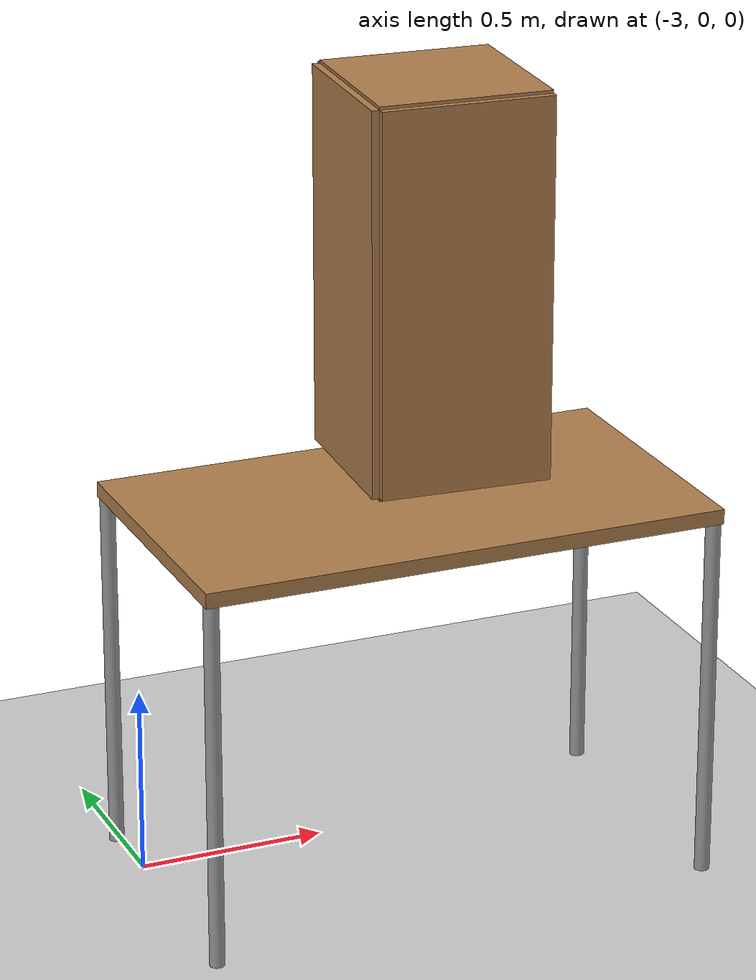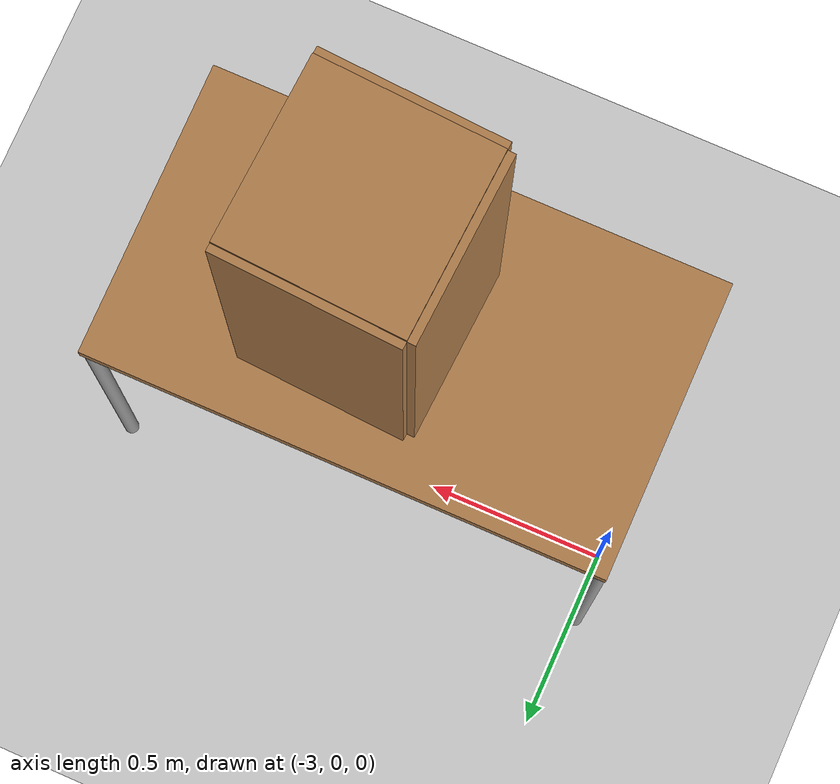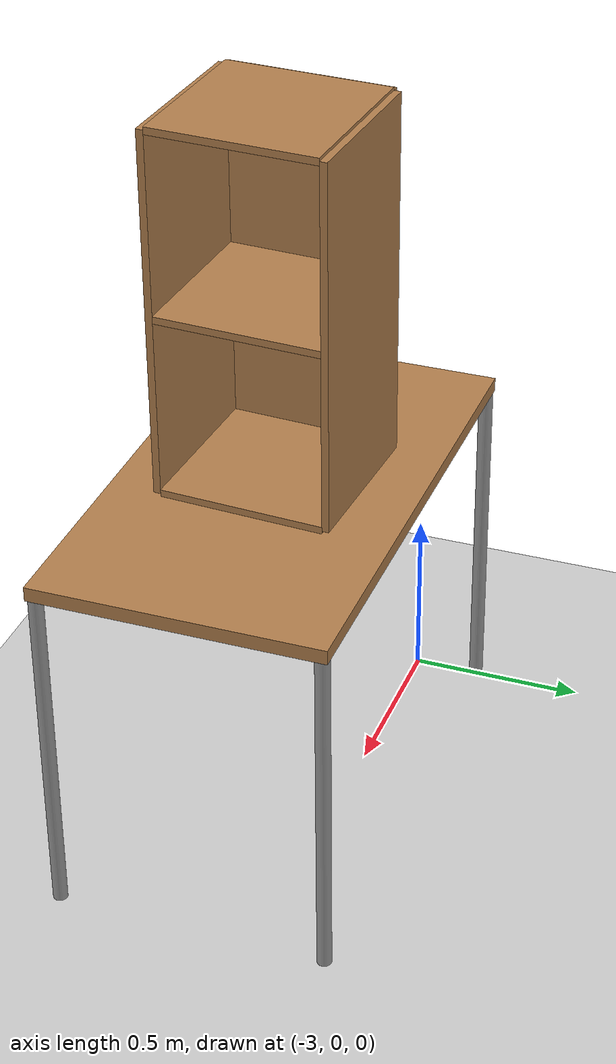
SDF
<sdf version="1.4">
 <world name="default">
  <include><uri>model://ground_plane</uri></include>
  <include><uri>model://sun</uri></include>
  <model name="table">
   <static>1</static>
   <link name="link">
    <collision name="surface">
     <pose>0 0 1 0 -0 0</pose>
     <geometry><box><size>1.5 0.8 0.03</size></box></geometry>
     <surface><friction><ode><mu>0.6</mu><mu2>0.6</mu2></ode></friction></surface>
    </collision>
    <visual name="visual1">
     <pose>0 0 1 0 -0 0</pose>
     <geometry><box><size>1.4 0.8 0.04</size></box></geometry>
     <material>
      <script><uri>file://media/materials/scripts/gazebo.material</uri><name>Gazebo/Wood</name></script>
     </material>
    </visual>
    <collision name="front_left_leg">
     <pose>0.68 0.38 0.5 0 -0 0</pose>
     <geometry><cylinder><radius>0.02</radius><length>1</length></cylinder></geometry>
    </collision>
    <visual name="front_left_leg">
     <pose>0.68 0.38 0.5 0 -0 0</pose>
     <geometry><cylinder><radius>0.02</radius><length>1</length></cylinder></geometry>
     <material>
      <script><uri>file://media/materials/scripts/gazebo.material</uri><name>Gazebo/Grey</name></script>
     </material>
    </visual>
    <collision name="front_right_leg">
     <pose>0.68 -0.38 0.5 0 -0 0</pose>
     <geometry><cylinder><radius>0.02</radius><length>1</length></cylinder></geometry>
    </collision>
    <visual name="front_right_leg">
     <pose>0.68 -0.38 0.5 0 -0 0</pose>
     <geometry><cylinder><radius>0.02</radius><length>1</length></cylinder></geometry>
     <material>
      <script><uri>file://media/materials/scripts/gazebo.material</uri><name>Gazebo/Grey</name></script>
     </material>
    </visual>
    <collision name="back_right_leg">
     <pose>-0.68 -0.38 0.5 0 -0 0</pose>
     <geometry><cylinder><radius>0.02</radius><length>1</length></cylinder></geometry>
    </collision>
    <visual name="back_right_leg">
     <pose>-0.68 -0.38 0.5 0 -0 0</pose>
     <geometry><cylinder><radius>0.02</radius><length>1</length></cylinder></geometry>
     <material>
      <script><uri>file://media/materials/scripts/gazebo.material</uri><name>Gazebo/Grey</name></script>
     </material>
    </visual>
    <collision name="back_left_leg">
     <pose>-0.68 0.38 0.5 0 -0 0</pose>
     <geometry><cylinder><radius>0.02</radius><length>1</length></cylinder></geometry>
    </collision>
    <visual name="back_left_leg">
     <pose>-0.68 0.38 0.5 0 -0 0</pose>
     <geometry><cylinder><radius>0.02</radius><length>1</length></cylinder></geometry>
     <material>
      <script><uri>file://media/materials/scripts/gazebo.material</uri><name>Gazebo/Grey</name></script>
     </material>
    </visual>
    <inertial>
     <inertia><ixx>1</ixx><ixy>0</ixy><ixz>0</ixz><iyy>1</iyy><iyz>0</iyz><izz>1</izz></inertia>
     <mass>1</mass>
    </inertial>
   </link>
   <pose>-2.330299 -0.19778 -2e-06 0 -0 0</pose>
  </model>
  <model name="cabinet_0_0">
   <link name="cabinet_bottom_plate">
    <pose>0.199247 -0.17424 1.09003 0 -0 3.07986</pose>
    <inertial>
     <pose>0 0 -0.020361 0 -0 0</pose>
     <inertia><ixx>0</ixx><ixy>0</ixy><ixz>0</ixz><iyy>0</iyy><iyz>0</iyz><izz>0</izz></inertia>
     <mass>24.5617</mass>
    </inertial>
    <visual name="cabinet_bottom_plate_geom_visual">
     <pose>0 0 0.01 0 -0 0</pose>
     <geometry><box><size>0.45 0.450979 0.019706</size></box></geometry>
     <material>
      <script><uri>file://media/materials/scripts/gazebo.material</uri><name>Gazebo/Wood</name></script>
      <ambient>1 1 1 1</ambient>
      <diffuse>1 1 1 1</diffuse>
      <specular>0.2 0.2 0.2 1</specular>
      <emissive>0 0 0 1</emissive>
     </material>
    </visual>
    <visual name="cabinet_bottom_plate_geom_cabinet_back_plate_visual">
     <pose>0.235 0 0.51 0 -0 0</pose>
     <geometry><box><size>0.02 0.450979 1.00329</size></box></geometry>
     <material>
      <script><uri>file://media/materials/scripts/gazebo.material</uri><name>Gazebo/Wood</name></script>
      <ambient>1 1 1 1</ambient>
      <diffuse>1 1 1 1</diffuse>
      <specular>0.2 0.2 0.2 1</specular>
      <emissive>0 0 0 1</emissive>
     </material>
    </visual>
    <visual name="cabinet_bottom_plate_geom_cabinet_left_plate_visual">
     <pose>0 0.235 0.51 0 -0 0</pose>
     <geometry><box><size>0.45 0.019921 1.00329</size></box></geometry>
     <material>
      <script><uri>file://media/materials/scripts/gazebo.material</uri><name>Gazebo/Wood</name></script>
      <ambient>1 1 1 1</ambient>
      <diffuse>1 1 1 1</diffuse>
      <specular>0.2 0.2 0.2 1</specular>
      <emissive>0 0 0 1</emissive>
     </material>
    </visual>
    <visual name="cabinet_bottom_plate_geom_cabinet_middle_plate_visual">
     <pose>0 0 0.51 0 -0 0</pose>
     <geometry><box><size>0.45 0.450979 0.019706</size></box></geometry>
     <material>
      <script><uri>file://media/materials/scripts/gazebo.material</uri><name>Gazebo/Wood</name></script>
      <ambient>1 1 1 1</ambient>
      <diffuse>1 1 1 1</diffuse>
      <specular>0.2 0.2 0.2 1</specular>
      <emissive>0 0 0 1</emissive>
     </material>
    </visual>
    <visual name="cabinet_bottom_plate_geom_cabinet_right_plate_visual">
     <pose>0 -0.235 0.51 0 -0 0</pose>
     <geometry><box><size>0.45 0.019921 1.00329</size></box></geometry>
     <material>
      <script><uri>file://media/materials/scripts/gazebo.material</uri><name>Gazebo/Wood</name></script>
      <ambient>1 1 1 1</ambient>
      <diffuse>1 1 1 1</diffuse>
      <specular>0.2 0.2 0.2 1</specular>
      <emissive>0 0 0 1</emissive>
     </material>
    </visual>
    <visual name="cabinet_bottom_plate_geom_cabinet_top_plate_visual">
     <pose>0 0 1.01 0 -0 0</pose>
     <geometry><box><size>0.45 0.450979 0.019706</size></box></geometry>
     <material>
      <script><uri>file://media/materials/scripts/gazebo.material</uri><name>Gazebo/Wood</name></script>
      <ambient>1 1 1 1</ambient>
      <diffuse>1 1 1 1</diffuse>
      <specular>0.2 0.2 0.2 1</specular>
      <emissive>0 0 0 1</emissive>
     </material>
    </visual>
    <collision name="cabinet_bottom_plate_geom">
     <pose>0 0 0.01 0 -0 0</pose>
     <geometry><box><size>0.45 0.450979 0.019706</size></box></geometry>
     <surface>
      <friction>
       <ode><mu>1</mu><mu2>1</mu2><fdir1>0 0 0</fdir1><slip1>0</slip1><slip2>0</slip2></ode>
       <torsional>
        <coefficient>1</coefficient>
        <patch_radius>0</patch_radius>
        <surface_radius>0</surface_radius>
        <use_patch_radius>1</use_patch_radius>
        <ode><slip>0</slip></ode>
       </torsional>
      </friction>
      <bounce><restitution_coefficient>0</restitution_coefficient><threshold>1e+06</threshold></bounce>
      <contact>
       <collide_without_contact>0</collide_without_contact>
       <collide_without_contact_bitmask>1</collide_without_contact_bitmask>
       <collide_bitmask>1</collide_bitmask>
       <ode>
        <soft_cfm>0</soft_cfm>
        <soft_erp>0.2</soft_erp>
        <kp>1e+13</kp>
        <kd>1</kd>
        <max_vel>0.01</max_vel>
        <min_depth>0</min_depth>
       </ode>
       <bullet>
        <split_impulse>1</split_impulse>
        <split_impulse_penetration_threshold>-0.01</split_impulse_penetration_threshold>
        <soft_cfm>0</soft_cfm>
        <soft_erp>0.2</soft_erp>
        <kp>1e+13</kp>
        <kd>1</kd>
       </bullet>
      </contact>
     </surface>
    </collision>
    <collision name="cabinet_bottom_plate_geom_cabinet_back_plate">
     <pose>0.235 0 0.51 0 -0 0</pose>
     <geometry><box><size>0.02 0.450979 1.00329</size></box></geometry>
     <surface>
      <friction>
       <ode><mu>1</mu><mu2>1</mu2><fdir1>0 0 0</fdir1><slip1>0</slip1><slip2>0</slip2></ode>
       <torsional>
        <coefficient>1</coefficient>
        <patch_radius>0</patch_radius>
        <surface_radius>0</surface_radius>
        <use_patch_radius>1</use_patch_radius>
        <ode><slip>0</slip></ode>
       </torsional>
      </friction>
      <bounce><restitution_coefficient>0</restitution_coefficient><threshold>1e+06</threshold></bounce>
      <contact>
       <collide_without_contact>0</collide_without_contact>
       <collide_without_contact_bitmask>1</collide_without_contact_bitmask>
       <collide_bitmask>1</collide_bitmask>
       <ode>
        <soft_cfm>0</soft_cfm>
        <soft_erp>0.2</soft_erp>
        <kp>1e+13</kp>
        <kd>1</kd>
        <max_vel>0.01</max_vel>
        <min_depth>0</min_depth>
       </ode>
       <bullet>
        <split_impulse>1</split_impulse>
        <split_impulse_penetration_threshold>-0.01</split_impulse_penetration_threshold>
        <soft_cfm>0</soft_cfm>
        <soft_erp>0.2</soft_erp>
        <kp>1e+13</kp>
        <kd>1</kd>
       </bullet>
      </contact>
     </surface>
    </collision>
    <collision name="cabinet_bottom_plate_geom_cabinet_left_plate">
     <pose>0 0.235 0.51 0 -0 0</pose>
     <geometry><box><size>0.45 0.019921 1.00329</size></box></geometry>
     <surface>
      <friction>
       <ode><mu>1</mu><mu2>1</mu2><fdir1>0 0 0</fdir1><slip1>0</slip1><slip2>0</slip2></ode>
       <torsional>
        <coefficient>1</coefficient>
        <patch_radius>0</patch_radius>
        <surface_radius>0</surface_radius>
        <use_patch_radius>1</use_patch_radius>
        <ode><slip>0</slip></ode>
       </torsional>
      </friction>
      <bounce><restitution_coefficient>0</restitution_coefficient><threshold>1e+06</threshold></bounce>
      <contact>
       <collide_without_contact>0</collide_without_contact>
       <collide_without_contact_bitmask>1</collide_without_contact_bitmask>
       <collide_bitmask>1</collide_bitmask>
       <ode>
        <soft_cfm>0</soft_cfm>
        <soft_erp>0.2</soft_erp>
        <kp>1e+13</kp>
        <kd>1</kd>
        <max_vel>0.01</max_vel>
        <min_depth>0</min_depth>
       </ode>
       <bullet>
        <split_impulse>1</split_impulse>
        <split_impulse_penetration_threshold>-0.01</split_impulse_penetration_threshold>
        <soft_cfm>0</soft_cfm>
        <soft_erp>0.2</soft_erp>
        <kp>1e+13</kp>
        <kd>1</kd>
       </bullet>
      </contact>
     </surface>
    </collision>
    <collision name="cabinet_bottom_plate_geom_cabinet_top_plate">
     <pose>0 0 1.01 0 -0 0</pose>
     <geometry><box><size>0.45 0.450979 0.019706</size></box></geometry>
     <surface>
      <friction>
       <ode><mu>1</mu><mu2>1</mu2><fdir1>0 0 0</fdir1><slip1>0</slip1><slip2>0</slip2></ode>
       <torsional>
        <coefficient>1</coefficient>
        <patch_radius>0</patch_radius>
        <surface_radius>0</surface_radius>
        <use_patch_radius>1</use_patch_radius>
        <ode><slip>0</slip></ode>
       </torsional>
      </friction>
      <bounce><restitution_coefficient>0</restitution_coefficient><threshold>1e+06</threshold></bounce>
      <contact>
       <collide_without_contact>0</collide_without_contact>
       <collide_without_contact_bitmask>1</collide_without_contact_bitmask>
       <collide_bitmask>1</collide_bitmask>
       <ode>
        <soft_cfm>0</soft_cfm>
        <soft_erp>0.2</soft_erp>
        <kp>1e+13</kp>
        <kd>1</kd>
        <max_vel>0.01</max_vel>
        <min_depth>0</min_depth>
       </ode>
       <bullet>
        <split_impulse>1</split_impulse>
        <split_impulse_penetration_threshold>-0.01</split_impulse_penetration_threshold>
        <soft_cfm>0</soft_cfm>
        <soft_erp>0.2</soft_erp>
        <kp>1e+13</kp>
        <kd>1</kd>
       </bullet>
      </contact>
     </surface>
    </collision>
    <collision name="cabinet_bottom_plate_geom_cabinet_middle_plate">
     <pose>0 0 0.51 0 -0 0</pose>
     <geometry><box><size>0.45 0.450979 0.019706</size></box></geometry>
     <surface>
      <friction>
       <ode><mu>1</mu><mu2>1</mu2><fdir1>0 0 0</fdir1><slip1>0</slip1><slip2>0</slip2></ode>
       <torsional>
        <coefficient>1</coefficient>
        <patch_radius>0</patch_radius>
        <surface_radius>0</surface_radius>
        <use_patch_radius>1</use_patch_radius>
        <ode><slip>0</slip></ode>
       </torsional>
      </friction>
      <bounce><restitution_coefficient>0</restitution_coefficient><threshold>1e+06</threshold></bounce>
      <contact>
       <collide_without_contact>0</collide_without_contact>
       <collide_without_contact_bitmask>1</collide_without_contact_bitmask>
       <collide_bitmask>1</collide_bitmask>
       <ode>
        <soft_cfm>0</soft_cfm>
        <soft_erp>0.2</soft_erp>
        <kp>1e+13</kp>
        <kd>1</kd>
        <max_vel>0.01</max_vel>
        <min_depth>0</min_depth>
       </ode>
       <bullet>
        <split_impulse>1</split_impulse>
        <split_impulse_penetration_threshold>-0.01</split_impulse_penetration_threshold>
        <soft_cfm>0</soft_cfm>
        <soft_erp>0.2</soft_erp>
        <kp>1e+13</kp>
        <kd>1</kd>
       </bullet>
      </contact>
     </surface>
    </collision>
    <collision name="cabinet_bottom_plate_geom_cabinet_right_plate">
     <pose>0 -0.235 0.51 0 -0 0</pose>
     <geometry><box><size>0.45 0.019921 1.00329</size></box></geometry>
     <surface>
      <friction>
       <ode><mu>1</mu><mu2>1</mu2><fdir1>0 0 0</fdir1><slip1>0</slip1><slip2>0</slip2></ode>
       <torsional>
        <coefficient>1</coefficient>
        <patch_radius>0</patch_radius>
        <surface_radius>0</surface_radius>
        <use_patch_radius>1</use_patch_radius>
        <ode><slip>0</slip></ode>
       </torsional>
      </friction>
      <bounce><restitution_coefficient>0</restitution_coefficient><threshold>1e+06</threshold></bounce>
      <contact>
       <collide_without_contact>0</collide_without_contact>
       <collide_without_contact_bitmask>1</collide_without_contact_bitmask>
       <collide_bitmask>1</collide_bitmask>
       <ode>
        <soft_cfm>0</soft_cfm>
        <soft_erp>0.2</soft_erp>
        <kp>1e+13</kp>
        <kd>1</kd>
        <max_vel>0.01</max_vel>
        <min_depth>0</min_depth>
       </ode>
       <bullet>
        <split_impulse>1</split_impulse>
        <split_impulse_penetration_threshold>-0.01</split_impulse_penetration_threshold>
        <soft_cfm>0</soft_cfm>
        <soft_erp>0.2</soft_erp>
        <kp>1e+13</kp>
        <kd>1</kd>
       </bullet>
      </contact>
     </surface>
    </collision>
   </link>
   <static>0</static>
   <pose>-2.44217 0.014899 -0 0 -0 0</pose>
  </model>
 </world>
</sdf>
